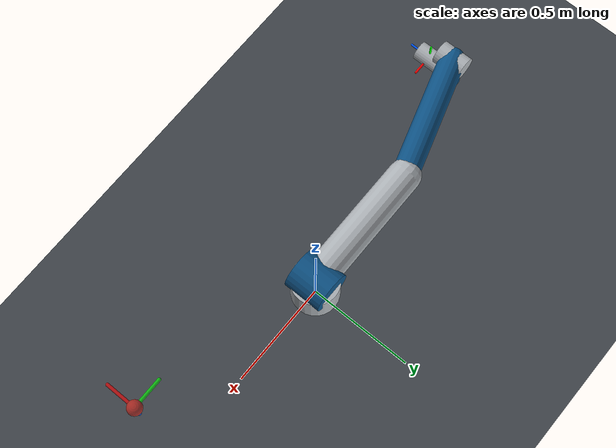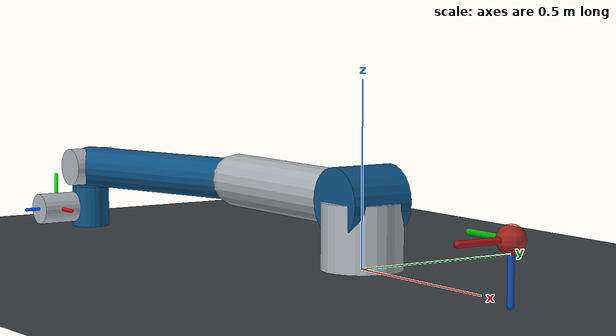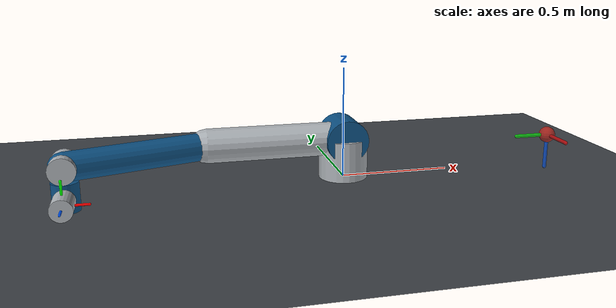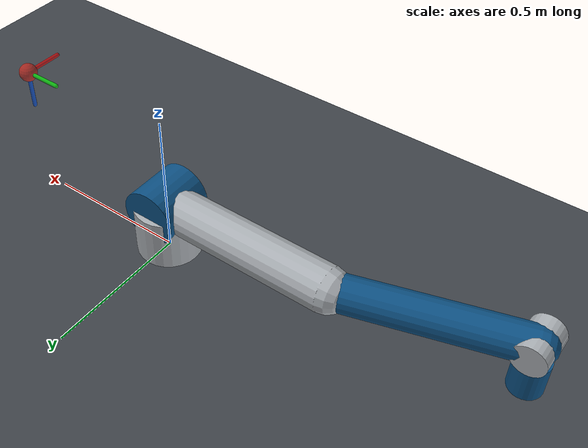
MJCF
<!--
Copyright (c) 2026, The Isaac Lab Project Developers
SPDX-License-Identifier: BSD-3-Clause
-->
<mujoco model="ur10e_reach_sim2sim">
  <compiler angle="radian" autolimits="true"/>
  <option timestep="0.008333333333333333" gravity="0 0 0" integrator="implicitfast"/>

  <default>
    <joint armature="0" damping="0" frictionloss="0"/>
    <geom condim="3" contype="0" conaffinity="0" density="0"/>
    <position ctrllimited="false"/>
  </default>

  <asset>
    <material name="ur_blue" rgba="0.05 0.32 0.52 1"/>
    <material name="ur_gray" rgba="0.68 0.70 0.72 1"/>
    <material name="target" rgba="0.9 0.15 0.1 0.65"/>
  </asset>

  <worldbody>
    <geom name="floor" type="plane" size="2 2 0.05" pos="0 0 -0.05"
          rgba="0.25 0.27 0.29 1" contype="0" conaffinity="0"/>

    <body name="target" mocap="true" pos="0.8875 -0.225 0.2"
          quat="0 0.70710678 -0.70710678 0">
      <site name="target_site" type="sphere" size="0.035" material="target"/>
      <site name="target_frame_x" type="capsule" fromto="0 0 0 0.15 0 0"
            size="0.008" rgba="1 0 0 0.65"/>
      <site name="target_frame_y" type="capsule" fromto="0 0 0 0 0.15 0"
            size="0.008" rgba="0 1 0 0.65"/>
      <site name="target_frame_z" type="capsule" fromto="0 0 0 0 0 0.15"
            size="0.008" rgba="0 0.35 1 0.65"/>
    </body>

    <body name="base" pos="0 0 0">
      <inertial pos="0 0 0" mass="4"
                diaginertia="0.0061063308908 0.0061063308908 0.01125"/>
      <geom name="base_geom" type="cylinder" size="0.11 0.09"
            pos="0 0 0.09" material="ur_gray"/>

      <body name="shoulder_link" pos="0 0 0.1807">
        <joint name="shoulder_pan_joint" type="hinge" axis="0 0 1"
               range="-6.28318530718 6.28318530718"/>
        <inertial pos="0 0 0" mass="7.778"
                  diaginertia="0.0314743125769 0.0314743125769 0.021875625"/>
        <geom name="shoulder_geom" type="cylinder" size="0.095 0.09"
              quat="0.70710678 0.70710678 0 0" material="ur_blue"/>

        <body name="upper_arm_link" euler="1.570796327 0 0">
          <joint name="shoulder_lift_joint" type="hinge" axis="0 0 1"
                 range="-6.28318530718 6.28318530718"/>
          <inertial pos="-0.306 0 0.175" quat="0.70710678 0 0.70710678 0"
                    mass="12.93"
                    diaginertia="0.421753803798 0.421753803798 0.036365625"/>
          <geom name="upper_arm_geom" type="capsule"
                fromto="0 0 0 -0.6127 0 0" size="0.075" material="ur_gray"/>

          <body name="forearm_link" pos="-0.6127 0 0">
            <joint name="elbow_joint" type="hinge" axis="0 0 1"
                   range="-3.14159265359 3.14159265359"/>
            <inertial pos="-0.285775 0 0.0393" quat="0.70710678 0 0.70710678 0"
                      mass="3.87"
                      diaginertia="0.110793025489 0.110793025489 0.010884375"/>
            <geom name="forearm_geom" type="capsule"
                  fromto="0 0 0 -0.57155 0 0.17415" size="0.06"
                  material="ur_blue"/>

            <body name="wrist_1_link" pos="-0.57155 0 0.17415">
              <joint name="wrist_1_joint" type="hinge" axis="0 0 1"
                     range="-6.28318530718 6.28318530718"/>
              <inertial pos="0 0 0" mass="1.96"
                        diaginertia="0.0051082479567 0.0051082479567 0.0055125"/>
              <geom name="wrist_1_geom" type="cylinder" size="0.055 0.07"
                    material="ur_gray"/>

              <body name="wrist_2_link" pos="0 -0.11985 0"
                    euler="1.570796327 0 0">
                <joint name="wrist_2_joint" type="hinge" axis="0 0 1"
                       range="-6.28318530718 6.28318530718"/>
                <inertial pos="0 0 0" mass="1.96"
                          diaginertia="0.0051082479567 0.0051082479567 0.0055125"/>
                <geom name="wrist_2_geom" type="cylinder" size="0.055 0.06"
                      material="ur_blue"/>

                <body name="wrist_3_link" pos="0 0.11655 0"
                      euler="1.57079632659 3.14159265359 3.14159265359">
                  <joint name="wrist_3_joint" type="hinge" axis="0 0 1"
                         range="-6.28318530718 6.28318530718"/>
                  <inertial pos="0 0 -0.025" mass="0.202"
                            diaginertia="0.000144345775595 0.000144345775595 0.000204525"/>
                  <geom name="wrist_3_geom" type="cylinder" size="0.045 0.058"
                        material="ur_gray"/>
                  <site name="wrist_3_site" pos="0 0 0" size="0.018"
                        rgba="0.1 0.9 0.2 1"/>
                  <site name="ee_frame_x" type="capsule" fromto="0 0 0 0.10 0 0"
                        size="0.005" rgba="1 0 0 1"/>
                  <site name="ee_frame_y" type="capsule" fromto="0 0 0 0 0.10 0"
                        size="0.005" rgba="0 1 0 1"/>
                  <site name="ee_frame_z" type="capsule" fromto="0 0 0 0 0 0.10"
                        size="0.005" rgba="0 0.35 1 1"/>
                </body>
              </body>
            </body>
          </body>
        </body>
      </body>
    </body>
  </worldbody>

  <actuator>
    <position name="shoulder_pan_actuator" joint="shoulder_pan_joint"
              kp="1320" kv="72.6636085" forcelimited="true"
              forcerange="-330 330"/>
    <position name="shoulder_lift_actuator" joint="shoulder_lift_joint"
              kp="1320" kv="72.6636085" forcelimited="true"
              forcerange="-330 330"/>
    <position name="elbow_actuator" joint="elbow_joint"
              kp="600" kv="34.64101615" forcelimited="true"
              forcerange="-150 150"/>
    <position name="wrist_1_actuator" joint="wrist_1_joint"
              kp="216" kv="29.39387691" forcelimited="true"
              forcerange="-56 56"/>
    <position name="wrist_2_actuator" joint="wrist_2_joint"
              kp="216" kv="29.39387691" forcelimited="true"
              forcerange="-56 56"/>
    <position name="wrist_3_actuator" joint="wrist_3_joint"
              kp="216" kv="29.39387691" forcelimited="true"
              forcerange="-56 56"/>
  </actuator>
</mujoco>
